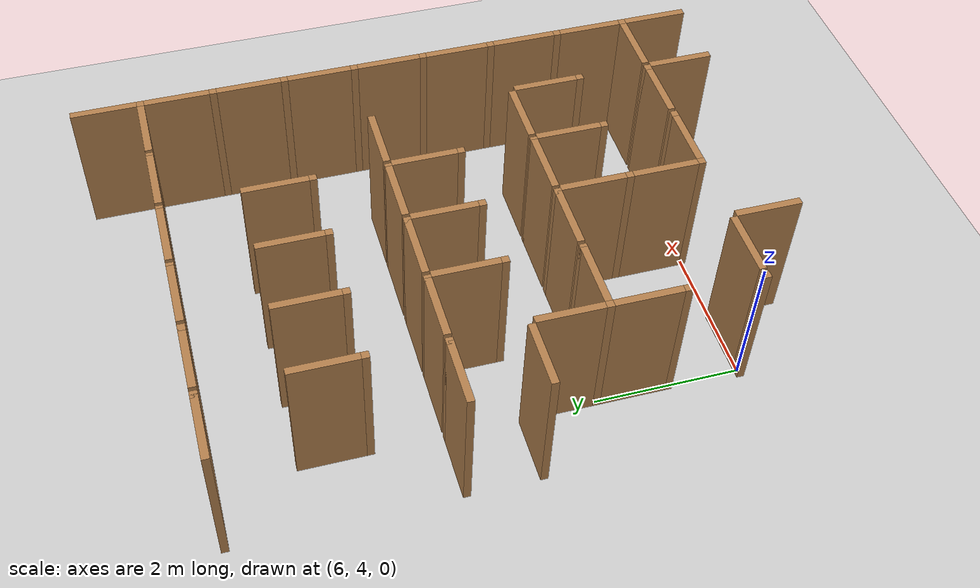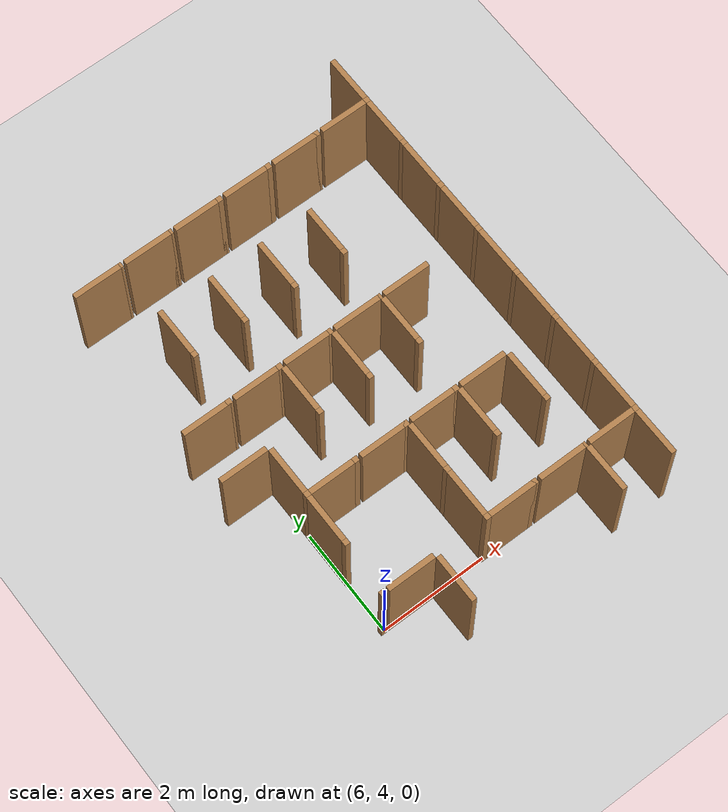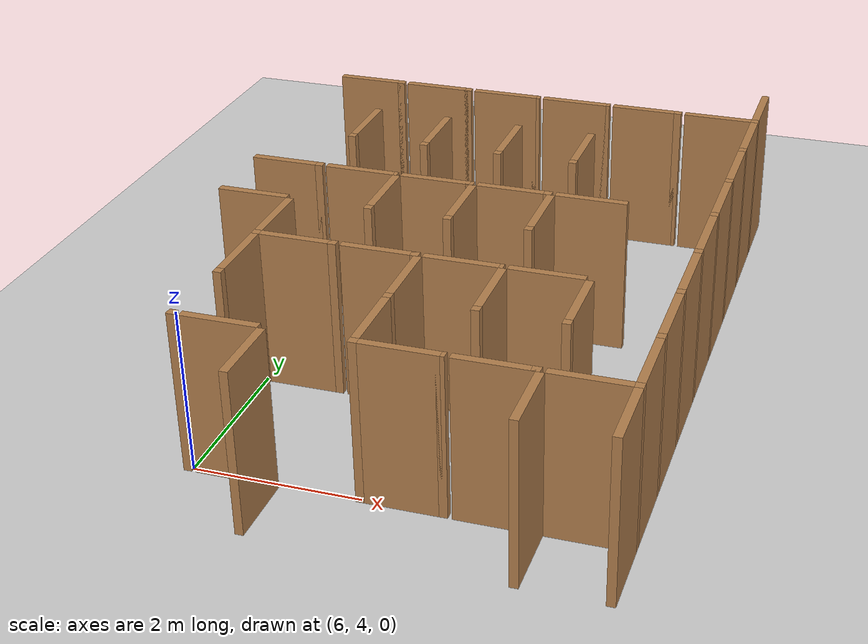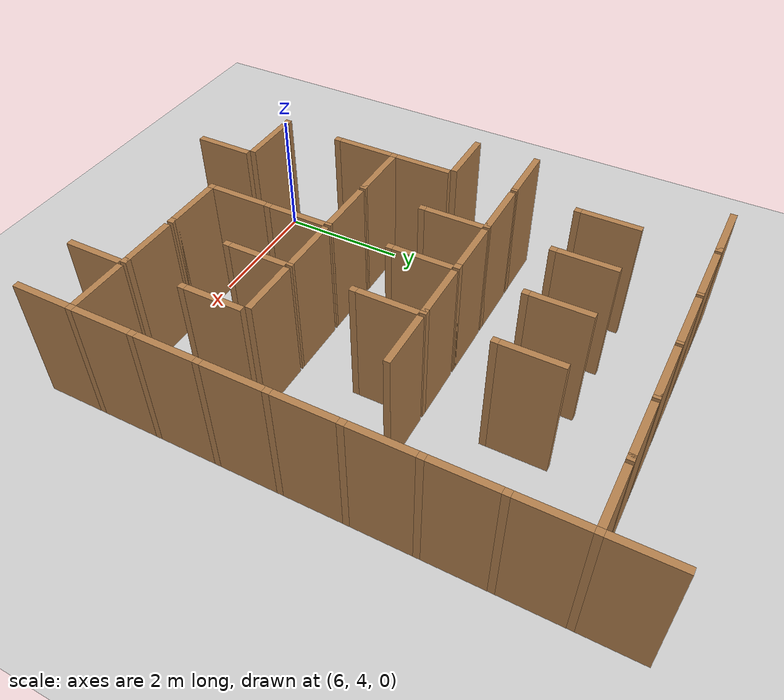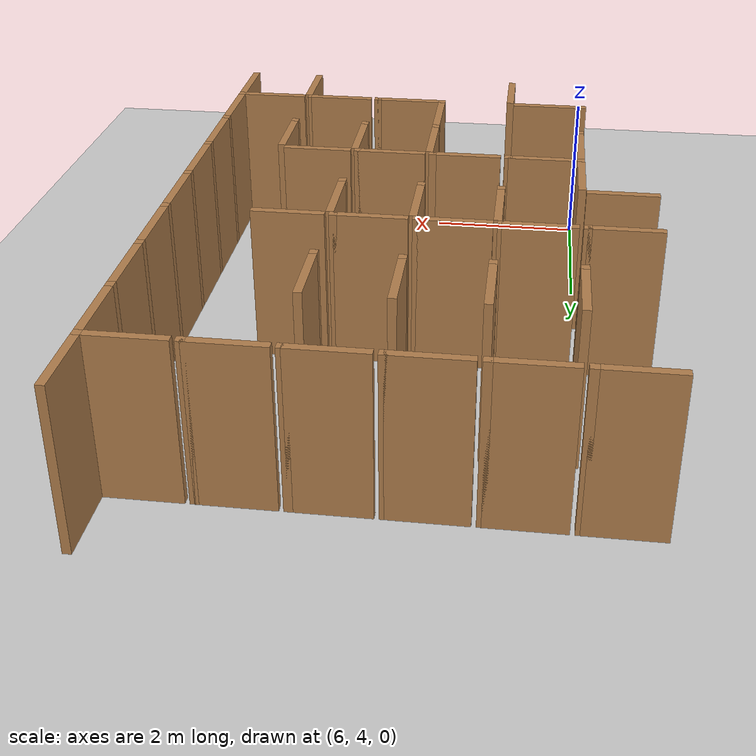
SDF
<sdf version="1.6">
 <world name="default">
  <include><uri>model://sun</uri></include>
  <model name="ground_plane">
   <static>true</static>
   <link name="link">
    <collision name="collision"><geometry><plane><size>12.0 12.0</size></plane></geometry></collision>
    <visual name="visual">
     <cast_shadows>false</cast_shadows>
     <geometry><plane><size>12.0 12.0</size></plane></geometry>
     <material>
      <script><uri>file://media/materials/scripts/gazebo.material</uri><name>Gazebo/Grey</name></script>
     </material>
    </visual>
   </link>
   <pose>6.0 6.0 0 0 0 0</pose>
  </model>
  <model name="vwall_3_7">
   <pose>7.0 3.5 1.0 0 0 0</pose>
   <link name="link">
    <collision name="collision"><geometry><box><size>0.1 0.9 2</size></box></geometry></collision>
    <visual name="visual">
     <geometry><box><size>0.1 0.9 2</size></box></geometry>
     <material>
      <script><uri>file://media/materials/scripts/gazebo.material</uri><name>Gazebo/Wood</name></script>
     </material>
    </visual>
   </link>
  </model>
  <model name="vwall_3_10">
   <pose>10.0 3.5 1.0 0 0 0</pose>
   <link name="link">
    <collision name="collision"><geometry><box><size>0.1 0.9 2</size></box></geometry></collision>
    <visual name="visual">
     <geometry><box><size>0.1 0.9 2</size></box></geometry>
     <material>
      <script><uri>file://media/materials/scripts/gazebo.material</uri><name>Gazebo/Wood</name></script>
     </material>
    </visual>
   </link>
  </model>
  <model name="vwall_3_11">
   <pose>11.0 3.5 1.0 0 0 0</pose>
   <link name="link">
    <collision name="collision"><geometry><box><size>0.1 0.9 2</size></box></geometry></collision>
    <visual name="visual">
     <geometry><box><size>0.1 0.9 2</size></box></geometry>
     <material>
      <script><uri>file://media/materials/scripts/gazebo.material</uri><name>Gazebo/Wood</name></script>
     </material>
    </visual>
   </link>
  </model>
  <model name="vwall_4_8">
   <pose>8.0 4.5 1.0 0 0 0</pose>
   <link name="link">
    <collision name="collision"><geometry><box><size>0.1 0.9 2</size></box></geometry></collision>
    <visual name="visual">
     <geometry><box><size>0.1 0.9 2</size></box></geometry>
     <material>
      <script><uri>file://media/materials/scripts/gazebo.material</uri><name>Gazebo/Wood</name></script>
     </material>
    </visual>
   </link>
  </model>
  <model name="joint_8.0_4.0">
   <pose>8.0 4.0 1.0 0 0 0</pose>
   <link name="link">
    <collision name="collision"><geometry><box><size>0.1 0.1 2</size></box></geometry></collision>
    <visual name="visual">
     <geometry><box><size>0.1 0.1 2</size></box></geometry>
     <material>
      <script><uri>file://media/materials/scripts/gazebo.material</uri><name>Gazebo/Wood</name></script>
     </material>
    </visual>
   </link>
  </model>
  <model name="vwall_4_11">
   <pose>11.0 4.5 1.0 0 0 0</pose>
   <link name="link">
    <collision name="collision"><geometry><box><size>0.1 0.9 2</size></box></geometry></collision>
    <visual name="visual">
     <geometry><box><size>0.1 0.9 2</size></box></geometry>
     <material>
      <script><uri>file://media/materials/scripts/gazebo.material</uri><name>Gazebo/Wood</name></script>
     </material>
    </visual>
   </link>
  </model>
  <model name="joint_11.0_4.0">
   <pose>11.0 4.0 1.0 0 0 0</pose>
   <link name="link">
    <collision name="collision"><geometry><box><size>0.1 0.1 2</size></box></geometry></collision>
    <visual name="visual">
     <geometry><box><size>0.1 0.1 2</size></box></geometry>
     <material>
      <script><uri>file://media/materials/scripts/gazebo.material</uri><name>Gazebo/Wood</name></script>
     </material>
    </visual>
   </link>
  </model>
  <model name="vwall_5_6">
   <pose>6.0 5.5 1.0 0 0 0</pose>
   <link name="link">
    <collision name="collision"><geometry><box><size>0.1 0.9 2</size></box></geometry></collision>
    <visual name="visual">
     <geometry><box><size>0.1 0.9 2</size></box></geometry>
     <material>
      <script><uri>file://media/materials/scripts/gazebo.material</uri><name>Gazebo/Wood</name></script>
     </material>
    </visual>
   </link>
  </model>
  <model name="joint_6.0_5.0">
   <pose>6.0 5.0 1.0 0 0 0</pose>
   <link name="link">
    <collision name="collision"><geometry><box><size>0.1 0.1 2</size></box></geometry></collision>
    <visual name="visual">
     <geometry><box><size>0.1 0.1 2</size></box></geometry>
     <material>
      <script><uri>file://media/materials/scripts/gazebo.material</uri><name>Gazebo/Wood</name></script>
     </material>
    </visual>
   </link>
  </model>
  <model name="vwall_5_8">
   <pose>8.0 5.5 1.0 0 0 0</pose>
   <link name="link">
    <collision name="collision"><geometry><box><size>0.1 0.9 2</size></box></geometry></collision>
    <visual name="visual">
     <geometry><box><size>0.1 0.9 2</size></box></geometry>
     <material>
      <script><uri>file://media/materials/scripts/gazebo.material</uri><name>Gazebo/Wood</name></script>
     </material>
    </visual>
   </link>
  </model>
  <model name="joint_8.0_5.0">
   <pose>8.0 5.0 1.0 0 0 0</pose>
   <link name="link">
    <collision name="collision"><geometry><box><size>0.1 0.1 2</size></box></geometry></collision>
    <visual name="visual">
     <geometry><box><size>0.1 0.1 2</size></box></geometry>
     <material>
      <script><uri>file://media/materials/scripts/gazebo.material</uri><name>Gazebo/Wood</name></script>
     </material>
    </visual>
   </link>
  </model>
  <model name="vwall_5_9">
   <pose>9.0 5.5 1.0 0 0 0</pose>
   <link name="link">
    <collision name="collision"><geometry><box><size>0.1 0.9 2</size></box></geometry></collision>
    <visual name="visual">
     <geometry><box><size>0.1 0.9 2</size></box></geometry>
     <material>
      <script><uri>file://media/materials/scripts/gazebo.material</uri><name>Gazebo/Wood</name></script>
     </material>
    </visual>
   </link>
  </model>
  <model name="joint_9.0_5.0">
   <pose>9.0 5.0 1.0 0 0 0</pose>
   <link name="link">
    <collision name="collision"><geometry><box><size>0.1 0.1 2</size></box></geometry></collision>
    <visual name="visual">
     <geometry><box><size>0.1 0.1 2</size></box></geometry>
     <material>
      <script><uri>file://media/materials/scripts/gazebo.material</uri><name>Gazebo/Wood</name></script>
     </material>
    </visual>
   </link>
  </model>
  <model name="vwall_5_10">
   <pose>10.0 5.5 1.0 0 0 0</pose>
   <link name="link">
    <collision name="collision"><geometry><box><size>0.1 0.9 2</size></box></geometry></collision>
    <visual name="visual">
     <geometry><box><size>0.1 0.9 2</size></box></geometry>
     <material>
      <script><uri>file://media/materials/scripts/gazebo.material</uri><name>Gazebo/Wood</name></script>
     </material>
    </visual>
   </link>
  </model>
  <model name="joint_10.0_5.0">
   <pose>10.0 5.0 1.0 0 0 0</pose>
   <link name="link">
    <collision name="collision"><geometry><box><size>0.1 0.1 2</size></box></geometry></collision>
    <visual name="visual">
     <geometry><box><size>0.1 0.1 2</size></box></geometry>
     <material>
      <script><uri>file://media/materials/scripts/gazebo.material</uri><name>Gazebo/Wood</name></script>
     </material>
    </visual>
   </link>
  </model>
  <model name="vwall_5_11">
   <pose>11.0 5.5 1.0 0 0 0</pose>
   <link name="link">
    <collision name="collision"><geometry><box><size>0.1 0.9 2</size></box></geometry></collision>
    <visual name="visual">
     <geometry><box><size>0.1 0.9 2</size></box></geometry>
     <material>
      <script><uri>file://media/materials/scripts/gazebo.material</uri><name>Gazebo/Wood</name></script>
     </material>
    </visual>
   </link>
  </model>
  <model name="joint_11.0_5.0">
   <pose>11.0 5.0 1.0 0 0 0</pose>
   <link name="link">
    <collision name="collision"><geometry><box><size>0.1 0.1 2</size></box></geometry></collision>
    <visual name="visual">
     <geometry><box><size>0.1 0.1 2</size></box></geometry>
     <material>
      <script><uri>file://media/materials/scripts/gazebo.material</uri><name>Gazebo/Wood</name></script>
     </material>
    </visual>
   </link>
  </model>
  <model name="vwall_6_6">
   <pose>6.0 6.5 1.0 0 0 0</pose>
   <link name="link">
    <collision name="collision"><geometry><box><size>0.1 0.9 2</size></box></geometry></collision>
    <visual name="visual">
     <geometry><box><size>0.1 0.9 2</size></box></geometry>
     <material>
      <script><uri>file://media/materials/scripts/gazebo.material</uri><name>Gazebo/Wood</name></script>
     </material>
    </visual>
   </link>
  </model>
  <model name="joint_6.0_6.0">
   <pose>6.0 6.0 1.0 0 0 0</pose>
   <link name="link">
    <collision name="collision"><geometry><box><size>0.1 0.1 2</size></box></geometry></collision>
    <visual name="visual">
     <geometry><box><size>0.1 0.1 2</size></box></geometry>
     <material>
      <script><uri>file://media/materials/scripts/gazebo.material</uri><name>Gazebo/Wood</name></script>
     </material>
    </visual>
   </link>
  </model>
  <model name="vwall_6_11">
   <pose>11.0 6.5 1.0 0 0 0</pose>
   <link name="link">
    <collision name="collision"><geometry><box><size>0.1 0.9 2</size></box></geometry></collision>
    <visual name="visual">
     <geometry><box><size>0.1 0.9 2</size></box></geometry>
     <material>
      <script><uri>file://media/materials/scripts/gazebo.material</uri><name>Gazebo/Wood</name></script>
     </material>
    </visual>
   </link>
  </model>
  <model name="joint_11.0_6.0">
   <pose>11.0 6.0 1.0 0 0 0</pose>
   <link name="link">
    <collision name="collision"><geometry><box><size>0.1 0.1 2</size></box></geometry></collision>
    <visual name="visual">
     <geometry><box><size>0.1 0.1 2</size></box></geometry>
     <material>
      <script><uri>file://media/materials/scripts/gazebo.material</uri><name>Gazebo/Wood</name></script>
     </material>
    </visual>
   </link>
  </model>
  <model name="vwall_7_7">
   <pose>7.0 7.5 1.0 0 0 0</pose>
   <link name="link">
    <collision name="collision"><geometry><box><size>0.1 0.9 2</size></box></geometry></collision>
    <visual name="visual">
     <geometry><box><size>0.1 0.9 2</size></box></geometry>
     <material>
      <script><uri>file://media/materials/scripts/gazebo.material</uri><name>Gazebo/Wood</name></script>
     </material>
    </visual>
   </link>
  </model>
  <model name="joint_7.0_7.0">
   <pose>7.0 7.0 1.0 0 0 0</pose>
   <link name="link">
    <collision name="collision"><geometry><box><size>0.1 0.1 2</size></box></geometry></collision>
    <visual name="visual">
     <geometry><box><size>0.1 0.1 2</size></box></geometry>
     <material>
      <script><uri>file://media/materials/scripts/gazebo.material</uri><name>Gazebo/Wood</name></script>
     </material>
    </visual>
   </link>
  </model>
  <model name="vwall_7_8">
   <pose>8.0 7.5 1.0 0 0 0</pose>
   <link name="link">
    <collision name="collision"><geometry><box><size>0.1 0.9 2</size></box></geometry></collision>
    <visual name="visual">
     <geometry><box><size>0.1 0.9 2</size></box></geometry>
     <material>
      <script><uri>file://media/materials/scripts/gazebo.material</uri><name>Gazebo/Wood</name></script>
     </material>
    </visual>
   </link>
  </model>
  <model name="joint_8.0_7.0">
   <pose>8.0 7.0 1.0 0 0 0</pose>
   <link name="link">
    <collision name="collision"><geometry><box><size>0.1 0.1 2</size></box></geometry></collision>
    <visual name="visual">
     <geometry><box><size>0.1 0.1 2</size></box></geometry>
     <material>
      <script><uri>file://media/materials/scripts/gazebo.material</uri><name>Gazebo/Wood</name></script>
     </material>
    </visual>
   </link>
  </model>
  <model name="vwall_7_9">
   <pose>9.0 7.5 1.0 0 0 0</pose>
   <link name="link">
    <collision name="collision"><geometry><box><size>0.1 0.9 2</size></box></geometry></collision>
    <visual name="visual">
     <geometry><box><size>0.1 0.9 2</size></box></geometry>
     <material>
      <script><uri>file://media/materials/scripts/gazebo.material</uri><name>Gazebo/Wood</name></script>
     </material>
    </visual>
   </link>
  </model>
  <model name="joint_9.0_7.0">
   <pose>9.0 7.0 1.0 0 0 0</pose>
   <link name="link">
    <collision name="collision"><geometry><box><size>0.1 0.1 2</size></box></geometry></collision>
    <visual name="visual">
     <geometry><box><size>0.1 0.1 2</size></box></geometry>
     <material>
      <script><uri>file://media/materials/scripts/gazebo.material</uri><name>Gazebo/Wood</name></script>
     </material>
    </visual>
   </link>
  </model>
  <model name="vwall_7_11">
   <pose>11.0 7.5 1.0 0 0 0</pose>
   <link name="link">
    <collision name="collision"><geometry><box><size>0.1 0.9 2</size></box></geometry></collision>
    <visual name="visual">
     <geometry><box><size>0.1 0.9 2</size></box></geometry>
     <material>
      <script><uri>file://media/materials/scripts/gazebo.material</uri><name>Gazebo/Wood</name></script>
     </material>
    </visual>
   </link>
  </model>
  <model name="joint_11.0_7.0">
   <pose>11.0 7.0 1.0 0 0 0</pose>
   <link name="link">
    <collision name="collision"><geometry><box><size>0.1 0.1 2</size></box></geometry></collision>
    <visual name="visual">
     <geometry><box><size>0.1 0.1 2</size></box></geometry>
     <material>
      <script><uri>file://media/materials/scripts/gazebo.material</uri><name>Gazebo/Wood</name></script>
     </material>
    </visual>
   </link>
  </model>
  <model name="vwall_8_11">
   <pose>11.0 8.5 1.0 0 0 0</pose>
   <link name="link">
    <collision name="collision"><geometry><box><size>0.1 0.9 2</size></box></geometry></collision>
    <visual name="visual">
     <geometry><box><size>0.1 0.9 2</size></box></geometry>
     <material>
      <script><uri>file://media/materials/scripts/gazebo.material</uri><name>Gazebo/Wood</name></script>
     </material>
    </visual>
   </link>
  </model>
  <model name="joint_11.0_8.0">
   <pose>11.0 8.0 1.0 0 0 0</pose>
   <link name="link">
    <collision name="collision"><geometry><box><size>0.1 0.1 2</size></box></geometry></collision>
    <visual name="visual">
     <geometry><box><size>0.1 0.1 2</size></box></geometry>
     <material>
      <script><uri>file://media/materials/scripts/gazebo.material</uri><name>Gazebo/Wood</name></script>
     </material>
    </visual>
   </link>
  </model>
  <model name="vwall_9_6">
   <pose>6.0 9.5 1.0 0 0 0</pose>
   <link name="link">
    <collision name="collision"><geometry><box><size>0.1 0.9 2</size></box></geometry></collision>
    <visual name="visual">
     <geometry><box><size>0.1 0.9 2</size></box></geometry>
     <material>
      <script><uri>file://media/materials/scripts/gazebo.material</uri><name>Gazebo/Wood</name></script>
     </material>
    </visual>
   </link>
  </model>
  <model name="joint_6.0_9.0">
   <pose>6.0 9.0 1.0 0 0 0</pose>
   <link name="link">
    <collision name="collision"><geometry><box><size>0.1 0.1 2</size></box></geometry></collision>
    <visual name="visual">
     <geometry><box><size>0.1 0.1 2</size></box></geometry>
     <material>
      <script><uri>file://media/materials/scripts/gazebo.material</uri><name>Gazebo/Wood</name></script>
     </material>
    </visual>
   </link>
  </model>
  <model name="vwall_9_7">
   <pose>7.0 9.5 1.0 0 0 0</pose>
   <link name="link">
    <collision name="collision"><geometry><box><size>0.1 0.9 2</size></box></geometry></collision>
    <visual name="visual">
     <geometry><box><size>0.1 0.9 2</size></box></geometry>
     <material>
      <script><uri>file://media/materials/scripts/gazebo.material</uri><name>Gazebo/Wood</name></script>
     </material>
    </visual>
   </link>
  </model>
  <model name="joint_7.0_9.0">
   <pose>7.0 9.0 1.0 0 0 0</pose>
   <link name="link">
    <collision name="collision"><geometry><box><size>0.1 0.1 2</size></box></geometry></collision>
    <visual name="visual">
     <geometry><box><size>0.1 0.1 2</size></box></geometry>
     <material>
      <script><uri>file://media/materials/scripts/gazebo.material</uri><name>Gazebo/Wood</name></script>
     </material>
    </visual>
   </link>
  </model>
  <model name="vwall_9_8">
   <pose>8.0 9.5 1.0 0 0 0</pose>
   <link name="link">
    <collision name="collision"><geometry><box><size>0.1 0.9 2</size></box></geometry></collision>
    <visual name="visual">
     <geometry><box><size>0.1 0.9 2</size></box></geometry>
     <material>
      <script><uri>file://media/materials/scripts/gazebo.material</uri><name>Gazebo/Wood</name></script>
     </material>
    </visual>
   </link>
  </model>
  <model name="joint_8.0_9.0">
   <pose>8.0 9.0 1.0 0 0 0</pose>
   <link name="link">
    <collision name="collision"><geometry><box><size>0.1 0.1 2</size></box></geometry></collision>
    <visual name="visual">
     <geometry><box><size>0.1 0.1 2</size></box></geometry>
     <material>
      <script><uri>file://media/materials/scripts/gazebo.material</uri><name>Gazebo/Wood</name></script>
     </material>
    </visual>
   </link>
  </model>
  <model name="vwall_9_9">
   <pose>9.0 9.5 1.0 0 0 0</pose>
   <link name="link">
    <collision name="collision"><geometry><box><size>0.1 0.9 2</size></box></geometry></collision>
    <visual name="visual">
     <geometry><box><size>0.1 0.9 2</size></box></geometry>
     <material>
      <script><uri>file://media/materials/scripts/gazebo.material</uri><name>Gazebo/Wood</name></script>
     </material>
    </visual>
   </link>
  </model>
  <model name="joint_9.0_9.0">
   <pose>9.0 9.0 1.0 0 0 0</pose>
   <link name="link">
    <collision name="collision"><geometry><box><size>0.1 0.1 2</size></box></geometry></collision>
    <visual name="visual">
     <geometry><box><size>0.1 0.1 2</size></box></geometry>
     <material>
      <script><uri>file://media/materials/scripts/gazebo.material</uri><name>Gazebo/Wood</name></script>
     </material>
    </visual>
   </link>
  </model>
  <model name="vwall_9_11">
   <pose>11.0 9.5 1.0 0 0 0</pose>
   <link name="link">
    <collision name="collision"><geometry><box><size>0.1 0.9 2</size></box></geometry></collision>
    <visual name="visual">
     <geometry><box><size>0.1 0.9 2</size></box></geometry>
     <material>
      <script><uri>file://media/materials/scripts/gazebo.material</uri><name>Gazebo/Wood</name></script>
     </material>
    </visual>
   </link>
  </model>
  <model name="joint_11.0_9.0">
   <pose>11.0 9.0 1.0 0 0 0</pose>
   <link name="link">
    <collision name="collision"><geometry><box><size>0.1 0.1 2</size></box></geometry></collision>
    <visual name="visual">
     <geometry><box><size>0.1 0.1 2</size></box></geometry>
     <material>
      <script><uri>file://media/materials/scripts/gazebo.material</uri><name>Gazebo/Wood</name></script>
     </material>
    </visual>
   </link>
  </model>
  <model name="vwall_10_11">
   <pose>11.0 10.5 1.0 0 0 0</pose>
   <link name="link">
    <collision name="collision"><geometry><box><size>0.1 0.9 2</size></box></geometry></collision>
    <visual name="visual">
     <geometry><box><size>0.1 0.9 2</size></box></geometry>
     <material>
      <script><uri>file://media/materials/scripts/gazebo.material</uri><name>Gazebo/Wood</name></script>
     </material>
    </visual>
   </link>
  </model>
  <model name="joint_11.0_10.0">
   <pose>11.0 10.0 1.0 0 0 0</pose>
   <link name="link">
    <collision name="collision"><geometry><box><size>0.1 0.1 2</size></box></geometry></collision>
    <visual name="visual">
     <geometry><box><size>0.1 0.1 2</size></box></geometry>
     <material>
      <script><uri>file://media/materials/scripts/gazebo.material</uri><name>Gazebo/Wood</name></script>
     </material>
    </visual>
   </link>
  </model>
  <model name="vwall_11_11">
   <pose>11.0 11.5 1.0 0 0 0</pose>
   <link name="link">
    <collision name="collision"><geometry><box><size>0.1 0.9 2</size></box></geometry></collision>
    <visual name="visual">
     <geometry><box><size>0.1 0.9 2</size></box></geometry>
     <material>
      <script><uri>file://media/materials/scripts/gazebo.material</uri><name>Gazebo/Wood</name></script>
     </material>
    </visual>
   </link>
  </model>
  <model name="joint_11.0_11.0">
   <pose>11.0 11.0 1.0 0 0 0</pose>
   <link name="link">
    <collision name="collision"><geometry><box><size>0.1 0.1 2</size></box></geometry></collision>
    <visual name="visual">
     <geometry><box><size>0.1 0.1 2</size></box></geometry>
     <material>
      <script><uri>file://media/materials/scripts/gazebo.material</uri><name>Gazebo/Wood</name></script>
     </material>
    </visual>
   </link>
  </model>
  <model name="joint_5.95_4.0">
   <pose>5.95 4.0 1.0 0 0 0</pose>
   <link name="link">
    <collision name="collision"><geometry><box><size>0.1 0.1 2</size></box></geometry></collision>
    <visual name="visual">
     <geometry><box><size>0.1 0.1 2</size></box></geometry>
     <material>
      <script><uri>file://media/materials/scripts/gazebo.material</uri><name>Gazebo/Wood</name></script>
     </material>
    </visual>
   </link>
  </model>
  <model name="hwall_4_6">
   <pose>6.5 4.0 1.0 0 0 0</pose>
   <link name="link">
    <collision name="collision"><geometry><box><size>0.9 0.1 2</size></box></geometry></collision>
    <visual name="visual">
     <geometry><box><size>0.9 0.1 2</size></box></geometry>
     <material>
      <script><uri>file://media/materials/scripts/gazebo.material</uri><name>Gazebo/Wood</name></script>
     </material>
    </visual>
   </link>
  </model>
  <model name="hwall_4_8">
   <pose>8.5 4.0 1.0 0 0 0</pose>
   <link name="link">
    <collision name="collision"><geometry><box><size>0.9 0.1 2</size></box></geometry></collision>
    <visual name="visual">
     <geometry><box><size>0.9 0.1 2</size></box></geometry>
     <material>
      <script><uri>file://media/materials/scripts/gazebo.material</uri><name>Gazebo/Wood</name></script>
     </material>
    </visual>
   </link>
  </model>
  <model name="joint_8.95_4.0">
   <pose>8.95 4.0 1.0 0 0 0</pose>
   <link name="link">
    <collision name="collision"><geometry><box><size>0.1 0.1 2</size></box></geometry></collision>
    <visual name="visual">
     <geometry><box><size>0.1 0.1 2</size></box></geometry>
     <material>
      <script><uri>file://media/materials/scripts/gazebo.material</uri><name>Gazebo/Wood</name></script>
     </material>
    </visual>
   </link>
  </model>
  <model name="hwall_4_9">
   <pose>9.5 4.0 1.0 0 0 0</pose>
   <link name="link">
    <collision name="collision"><geometry><box><size>0.9 0.1 2</size></box></geometry></collision>
    <visual name="visual">
     <geometry><box><size>0.9 0.1 2</size></box></geometry>
     <material>
      <script><uri>file://media/materials/scripts/gazebo.material</uri><name>Gazebo/Wood</name></script>
     </material>
    </visual>
   </link>
  </model>
  <model name="joint_9.95_4.0">
   <pose>9.95 4.0 1.0 0 0 0</pose>
   <link name="link">
    <collision name="collision"><geometry><box><size>0.1 0.1 2</size></box></geometry></collision>
    <visual name="visual">
     <geometry><box><size>0.1 0.1 2</size></box></geometry>
     <material>
      <script><uri>file://media/materials/scripts/gazebo.material</uri><name>Gazebo/Wood</name></script>
     </material>
    </visual>
   </link>
  </model>
  <model name="hwall_4_10">
   <pose>10.5 4.0 1.0 0 0 0</pose>
   <link name="link">
    <collision name="collision"><geometry><box><size>0.9 0.1 2</size></box></geometry></collision>
    <visual name="visual">
     <geometry><box><size>0.9 0.1 2</size></box></geometry>
     <material>
      <script><uri>file://media/materials/scripts/gazebo.material</uri><name>Gazebo/Wood</name></script>
     </material>
    </visual>
   </link>
  </model>
  <model name="hwall_6_6">
   <pose>6.5 6.0 1.0 0 0 0</pose>
   <link name="link">
    <collision name="collision"><geometry><box><size>0.9 0.1 2</size></box></geometry></collision>
    <visual name="visual">
     <geometry><box><size>0.9 0.1 2</size></box></geometry>
     <material>
      <script><uri>file://media/materials/scripts/gazebo.material</uri><name>Gazebo/Wood</name></script>
     </material>
    </visual>
   </link>
  </model>
  <model name="joint_6.95_6.0">
   <pose>6.95 6.0 1.0 0 0 0</pose>
   <link name="link">
    <collision name="collision"><geometry><box><size>0.1 0.1 2</size></box></geometry></collision>
    <visual name="visual">
     <geometry><box><size>0.1 0.1 2</size></box></geometry>
     <material>
      <script><uri>file://media/materials/scripts/gazebo.material</uri><name>Gazebo/Wood</name></script>
     </material>
    </visual>
   </link>
  </model>
  <model name="hwall_6_7">
   <pose>7.5 6.0 1.0 0 0 0</pose>
   <link name="link">
    <collision name="collision"><geometry><box><size>0.9 0.1 2</size></box></geometry></collision>
    <visual name="visual">
     <geometry><box><size>0.9 0.1 2</size></box></geometry>
     <material>
      <script><uri>file://media/materials/scripts/gazebo.material</uri><name>Gazebo/Wood</name></script>
     </material>
    </visual>
   </link>
  </model>
  <model name="joint_7.95_6.0">
   <pose>7.95 6.0 1.0 0 0 0</pose>
   <link name="link">
    <collision name="collision"><geometry><box><size>0.1 0.1 2</size></box></geometry></collision>
    <visual name="visual">
     <geometry><box><size>0.1 0.1 2</size></box></geometry>
     <material>
      <script><uri>file://media/materials/scripts/gazebo.material</uri><name>Gazebo/Wood</name></script>
     </material>
    </visual>
   </link>
  </model>
  <model name="hwall_6_8">
   <pose>8.5 6.0 1.0 0 0 0</pose>
   <link name="link">
    <collision name="collision"><geometry><box><size>0.9 0.1 2</size></box></geometry></collision>
    <visual name="visual">
     <geometry><box><size>0.9 0.1 2</size></box></geometry>
     <material>
      <script><uri>file://media/materials/scripts/gazebo.material</uri><name>Gazebo/Wood</name></script>
     </material>
    </visual>
   </link>
  </model>
  <model name="joint_8.95_6.0">
   <pose>8.95 6.0 1.0 0 0 0</pose>
   <link name="link">
    <collision name="collision"><geometry><box><size>0.1 0.1 2</size></box></geometry></collision>
    <visual name="visual">
     <geometry><box><size>0.1 0.1 2</size></box></geometry>
     <material>
      <script><uri>file://media/materials/scripts/gazebo.material</uri><name>Gazebo/Wood</name></script>
     </material>
    </visual>
   </link>
  </model>
  <model name="hwall_6_9">
   <pose>9.5 6.0 1.0 0 0 0</pose>
   <link name="link">
    <collision name="collision"><geometry><box><size>0.9 0.1 2</size></box></geometry></collision>
    <visual name="visual">
     <geometry><box><size>0.9 0.1 2</size></box></geometry>
     <material>
      <script><uri>file://media/materials/scripts/gazebo.material</uri><name>Gazebo/Wood</name></script>
     </material>
    </visual>
   </link>
  </model>
  <model name="hwall_7_5">
   <pose>5.5 7.0 1.0 0 0 0</pose>
   <link name="link">
    <collision name="collision"><geometry><box><size>0.9 0.1 2</size></box></geometry></collision>
    <visual name="visual">
     <geometry><box><size>0.9 0.1 2</size></box></geometry>
     <material>
      <script><uri>file://media/materials/scripts/gazebo.material</uri><name>Gazebo/Wood</name></script>
     </material>
    </visual>
   </link>
  </model>
  <model name="hwall_8_5">
   <pose>5.5 8.0 1.0 0 0 0</pose>
   <link name="link">
    <collision name="collision"><geometry><box><size>0.9 0.1 2</size></box></geometry></collision>
    <visual name="visual">
     <geometry><box><size>0.9 0.1 2</size></box></geometry>
     <material>
      <script><uri>file://media/materials/scripts/gazebo.material</uri><name>Gazebo/Wood</name></script>
     </material>
    </visual>
   </link>
  </model>
  <model name="joint_5.95_8.0">
   <pose>5.95 8.0 1.0 0 0 0</pose>
   <link name="link">
    <collision name="collision"><geometry><box><size>0.1 0.1 2</size></box></geometry></collision>
    <visual name="visual">
     <geometry><box><size>0.1 0.1 2</size></box></geometry>
     <material>
      <script><uri>file://media/materials/scripts/gazebo.material</uri><name>Gazebo/Wood</name></script>
     </material>
    </visual>
   </link>
  </model>
  <model name="hwall_8_6">
   <pose>6.5 8.0 1.0 0 0 0</pose>
   <link name="link">
    <collision name="collision"><geometry><box><size>0.9 0.1 2</size></box></geometry></collision>
    <visual name="visual">
     <geometry><box><size>0.9 0.1 2</size></box></geometry>
     <material>
      <script><uri>file://media/materials/scripts/gazebo.material</uri><name>Gazebo/Wood</name></script>
     </material>
    </visual>
   </link>
  </model>
  <model name="joint_6.95_8.0">
   <pose>6.95 8.0 1.0 0 0 0</pose>
   <link name="link">
    <collision name="collision"><geometry><box><size>0.1 0.1 2</size></box></geometry></collision>
    <visual name="visual">
     <geometry><box><size>0.1 0.1 2</size></box></geometry>
     <material>
      <script><uri>file://media/materials/scripts/gazebo.material</uri><name>Gazebo/Wood</name></script>
     </material>
    </visual>
   </link>
  </model>
  <model name="hwall_8_7">
   <pose>7.5 8.0 1.0 0 0 0</pose>
   <link name="link">
    <collision name="collision"><geometry><box><size>0.9 0.1 2</size></box></geometry></collision>
    <visual name="visual">
     <geometry><box><size>0.9 0.1 2</size></box></geometry>
     <material>
      <script><uri>file://media/materials/scripts/gazebo.material</uri><name>Gazebo/Wood</name></script>
     </material>
    </visual>
   </link>
  </model>
  <model name="joint_7.95_8.0">
   <pose>7.95 8.0 1.0 0 0 0</pose>
   <link name="link">
    <collision name="collision"><geometry><box><size>0.1 0.1 2</size></box></geometry></collision>
    <visual name="visual">
     <geometry><box><size>0.1 0.1 2</size></box></geometry>
     <material>
      <script><uri>file://media/materials/scripts/gazebo.material</uri><name>Gazebo/Wood</name></script>
     </material>
    </visual>
   </link>
  </model>
  <model name="hwall_8_8">
   <pose>8.5 8.0 1.0 0 0 0</pose>
   <link name="link">
    <collision name="collision"><geometry><box><size>0.9 0.1 2</size></box></geometry></collision>
    <visual name="visual">
     <geometry><box><size>0.9 0.1 2</size></box></geometry>
     <material>
      <script><uri>file://media/materials/scripts/gazebo.material</uri><name>Gazebo/Wood</name></script>
     </material>
    </visual>
   </link>
  </model>
  <model name="joint_8.95_8.0">
   <pose>8.95 8.0 1.0 0 0 0</pose>
   <link name="link">
    <collision name="collision"><geometry><box><size>0.1 0.1 2</size></box></geometry></collision>
    <visual name="visual">
     <geometry><box><size>0.1 0.1 2</size></box></geometry>
     <material>
      <script><uri>file://media/materials/scripts/gazebo.material</uri><name>Gazebo/Wood</name></script>
     </material>
    </visual>
   </link>
  </model>
  <model name="hwall_8_9">
   <pose>9.5 8.0 1.0 0 0 0</pose>
   <link name="link">
    <collision name="collision"><geometry><box><size>0.9 0.1 2</size></box></geometry></collision>
    <visual name="visual">
     <geometry><box><size>0.9 0.1 2</size></box></geometry>
     <material>
      <script><uri>file://media/materials/scripts/gazebo.material</uri><name>Gazebo/Wood</name></script>
     </material>
    </visual>
   </link>
  </model>
  <model name="hwall_11_5">
   <pose>5.5 11.0 1.0 0 0 0</pose>
   <link name="link">
    <collision name="collision"><geometry><box><size>0.9 0.1 2</size></box></geometry></collision>
    <visual name="visual">
     <geometry><box><size>0.9 0.1 2</size></box></geometry>
     <material>
      <script><uri>file://media/materials/scripts/gazebo.material</uri><name>Gazebo/Wood</name></script>
     </material>
    </visual>
   </link>
  </model>
  <model name="joint_5.95_11.0">
   <pose>5.95 11.0 1.0 0 0 0</pose>
   <link name="link">
    <collision name="collision"><geometry><box><size>0.1 0.1 2</size></box></geometry></collision>
    <visual name="visual">
     <geometry><box><size>0.1 0.1 2</size></box></geometry>
     <material>
      <script><uri>file://media/materials/scripts/gazebo.material</uri><name>Gazebo/Wood</name></script>
     </material>
    </visual>
   </link>
  </model>
  <model name="hwall_11_6">
   <pose>6.5 11.0 1.0 0 0 0</pose>
   <link name="link">
    <collision name="collision"><geometry><box><size>0.9 0.1 2</size></box></geometry></collision>
    <visual name="visual">
     <geometry><box><size>0.9 0.1 2</size></box></geometry>
     <material>
      <script><uri>file://media/materials/scripts/gazebo.material</uri><name>Gazebo/Wood</name></script>
     </material>
    </visual>
   </link>
  </model>
  <model name="joint_6.95_11.0">
   <pose>6.95 11.0 1.0 0 0 0</pose>
   <link name="link">
    <collision name="collision"><geometry><box><size>0.1 0.1 2</size></box></geometry></collision>
    <visual name="visual">
     <geometry><box><size>0.1 0.1 2</size></box></geometry>
     <material>
      <script><uri>file://media/materials/scripts/gazebo.material</uri><name>Gazebo/Wood</name></script>
     </material>
    </visual>
   </link>
  </model>
  <model name="hwall_11_7">
   <pose>7.5 11.0 1.0 0 0 0</pose>
   <link name="link">
    <collision name="collision"><geometry><box><size>0.9 0.1 2</size></box></geometry></collision>
    <visual name="visual">
     <geometry><box><size>0.9 0.1 2</size></box></geometry>
     <material>
      <script><uri>file://media/materials/scripts/gazebo.material</uri><name>Gazebo/Wood</name></script>
     </material>
    </visual>
   </link>
  </model>
  <model name="joint_7.95_11.0">
   <pose>7.95 11.0 1.0 0 0 0</pose>
   <link name="link">
    <collision name="collision"><geometry><box><size>0.1 0.1 2</size></box></geometry></collision>
    <visual name="visual">
     <geometry><box><size>0.1 0.1 2</size></box></geometry>
     <material>
      <script><uri>file://media/materials/scripts/gazebo.material</uri><name>Gazebo/Wood</name></script>
     </material>
    </visual>
   </link>
  </model>
  <model name="hwall_11_8">
   <pose>8.5 11.0 1.0 0 0 0</pose>
   <link name="link">
    <collision name="collision"><geometry><box><size>0.9 0.1 2</size></box></geometry></collision>
    <visual name="visual">
     <geometry><box><size>0.9 0.1 2</size></box></geometry>
     <material>
      <script><uri>file://media/materials/scripts/gazebo.material</uri><name>Gazebo/Wood</name></script>
     </material>
    </visual>
   </link>
  </model>
  <model name="joint_8.95_11.0">
   <pose>8.95 11.0 1.0 0 0 0</pose>
   <link name="link">
    <collision name="collision"><geometry><box><size>0.1 0.1 2</size></box></geometry></collision>
    <visual name="visual">
     <geometry><box><size>0.1 0.1 2</size></box></geometry>
     <material>
      <script><uri>file://media/materials/scripts/gazebo.material</uri><name>Gazebo/Wood</name></script>
     </material>
    </visual>
   </link>
  </model>
  <model name="hwall_11_9">
   <pose>9.5 11.0 1.0 0 0 0</pose>
   <link name="link">
    <collision name="collision"><geometry><box><size>0.9 0.1 2</size></box></geometry></collision>
    <visual name="visual">
     <geometry><box><size>0.9 0.1 2</size></box></geometry>
     <material>
      <script><uri>file://media/materials/scripts/gazebo.material</uri><name>Gazebo/Wood</name></script>
     </material>
    </visual>
   </link>
  </model>
  <model name="joint_9.95_11.0">
   <pose>9.95 11.0 1.0 0 0 0</pose>
   <link name="link">
    <collision name="collision"><geometry><box><size>0.1 0.1 2</size></box></geometry></collision>
    <visual name="visual">
     <geometry><box><size>0.1 0.1 2</size></box></geometry>
     <material>
      <script><uri>file://media/materials/scripts/gazebo.material</uri><name>Gazebo/Wood</name></script>
     </material>
    </visual>
   </link>
  </model>
  <model name="hwall_11_10">
   <pose>10.5 11.0 1.0 0 0 0</pose>
   <link name="link">
    <collision name="collision"><geometry><box><size>0.9 0.1 2</size></box></geometry></collision>
    <visual name="visual">
     <geometry><box><size>0.9 0.1 2</size></box></geometry>
     <material>
      <script><uri>file://media/materials/scripts/gazebo.material</uri><name>Gazebo/Wood</name></script>
     </material>
    </visual>
   </link>
  </model>
 </world>
</sdf>
